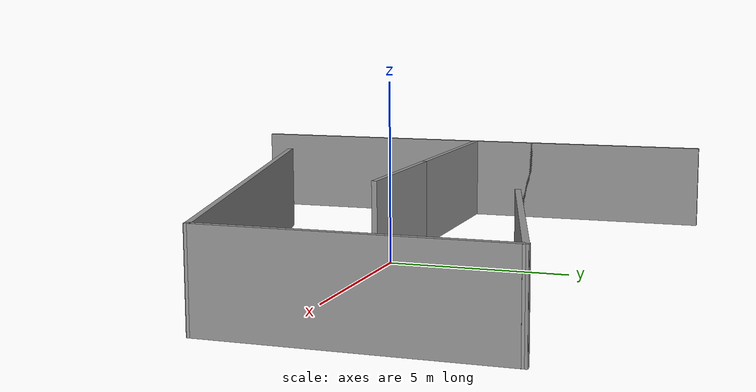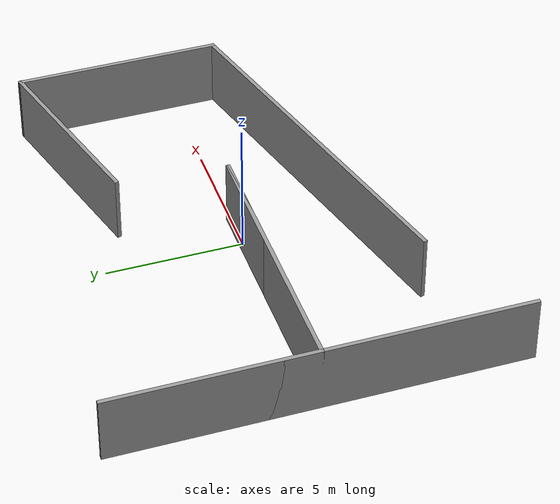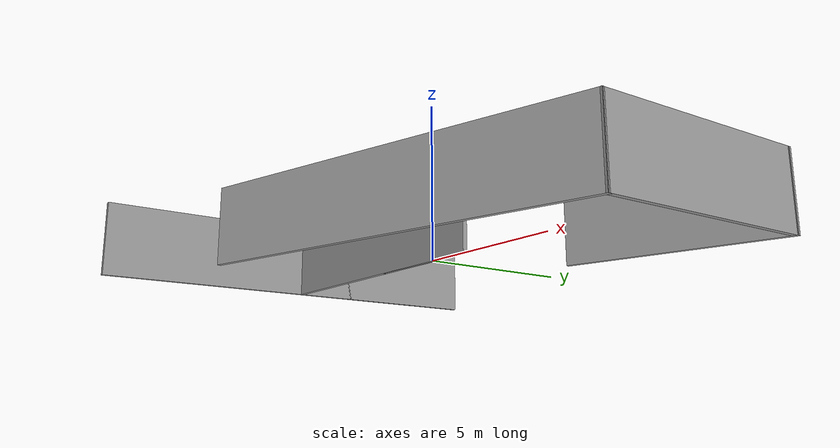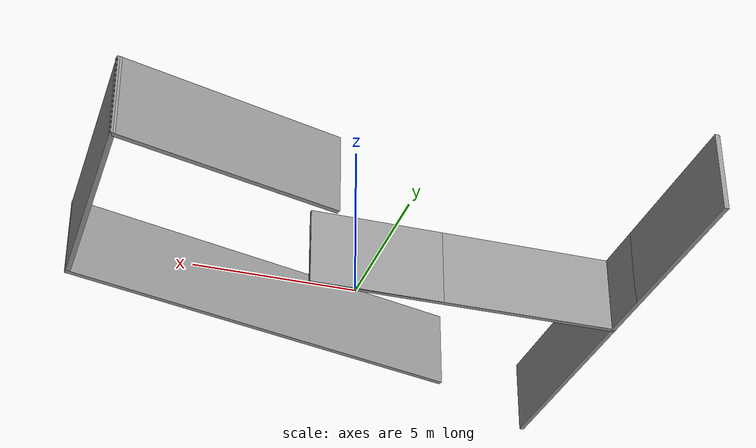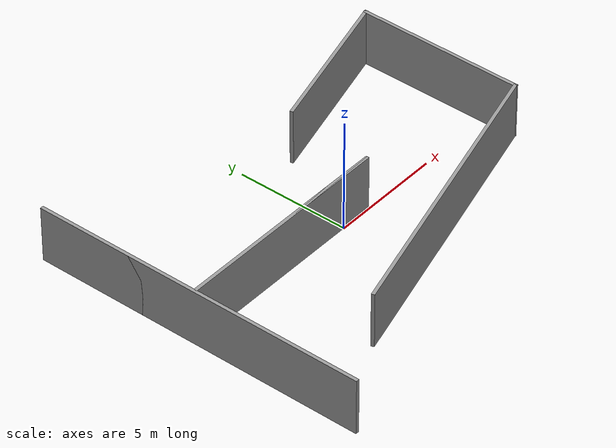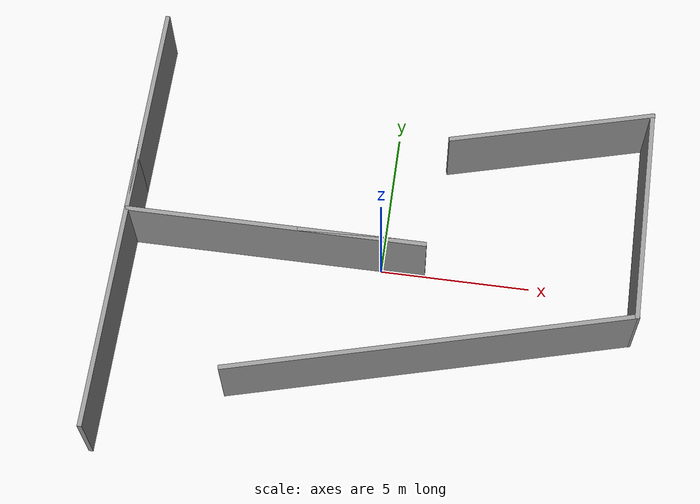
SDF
<?xml version='1.0'?>
<sdf version='1.7'>
  <model name='wall'>
    <link name='Wall_12'>
      <pose>1.99207 -3.2695 0 0 -0 0.261799</pose>
      <self_collide>0</self_collide>
      <enable_wind>0</enable_wind>
      <kinematic>0</kinematic>
      <visual name='Wall_12_Visual'>
        <pose>0 0 1.25 0 -0 0</pose>
        <geometry>
          <box>
            <size>13.5 0.15 2.5</size>
          </box>
        </geometry>
        <material>
          <script>
            <uri>file://media/materials/scripts/gazebo.material</uri>
            <name>Gazebo/Grey</name>
          </script>
          <ambient>1 1 1 1</ambient>
          <shader type='pixel'/>
        </material>
        <meta>
          <layer>0</layer>
        </meta>
        <transparency>0</transparency>
        <cast_shadows>1</cast_shadows>
      </visual>
      <collision name='Wall_12_Collision'>
        <laser_retro>0</laser_retro>
        <max_contacts>10</max_contacts>
        <pose>0 0 1.25 0 -0 0</pose>
        <geometry>
          <box>
            <size>13.5 0.15 2.5</size>
          </box>
        </geometry>
        <surface>
          <friction>
            <ode>
              <mu>1</mu>
              <mu2>1</mu2>
              <fdir1>0 0 0</fdir1>
              <slip1>0</slip1>
              <slip2>0</slip2>
            </ode>
            <torsional>
              <coefficient>1</coefficient>
              <patch_radius>0</patch_radius>
              <surface_radius>0</surface_radius>
              <use_patch_radius>1</use_patch_radius>
              <ode>
                <slip>0</slip>
              </ode>
            </torsional>
          </friction>
          <bounce>
            <restitution_coefficient>0</restitution_coefficient>
            <threshold>1e+06</threshold>
          </bounce>
          <contact>
            <collide_without_contact>0</collide_without_contact>
            <collide_without_contact_bitmask>1</collide_without_contact_bitmask>
            <collide_bitmask>1</collide_bitmask>
            <ode>
              <soft_cfm>0</soft_cfm>
              <soft_erp>0.2</soft_erp>
              <kp>1e+13</kp>
              <kd>1</kd>
              <max_vel>0.01</max_vel>
              <min_depth>0</min_depth>
            </ode>
            <bullet>
              <split_impulse>1</split_impulse>
              <split_impulse_penetration_threshold>-0.01</split_impulse_penetration_threshold>
              <soft_cfm>0</soft_cfm>
              <soft_erp>0.2</soft_erp>
              <kp>1e+13</kp>
              <kd>1</kd>
            </bullet>
          </contact>
        </surface>
      </collision>
    </link>
    <link name='Wall_13'>
      <pose>8.43962 2.13312 0 0 -0 1.5708</pose>
      <self_collide>0</self_collide>
      <enable_wind>0</enable_wind>
      <kinematic>0</kinematic>
      <visual name='Wall_13_Visual'>
        <pose>0 0 1.25 0 -0 0</pose>
        <geometry>
          <box>
            <size>7.5 0.15 2.5</size>
          </box>
        </geometry>
        <material>
          <script>
            <uri>file://media/materials/scripts/gazebo.material</uri>
            <name>Gazebo/Grey</name>
          </script>
          <ambient>1 1 1 1</ambient>
          <shader type='pixel'/>
        </material>
        <meta>
          <layer>0</layer>
        </meta>
        <transparency>0</transparency>
        <cast_shadows>1</cast_shadows>
      </visual>
      <collision name='Wall_13_Collision'>
        <laser_retro>0</laser_retro>
        <max_contacts>10</max_contacts>
        <pose>0 0 1.25 0 -0 0</pose>
        <geometry>
          <box>
            <size>7.5 0.15 2.5</size>
          </box>
        </geometry>
        <surface>
          <friction>
            <ode>
              <mu>1</mu>
              <mu2>1</mu2>
              <fdir1>0 0 0</fdir1>
              <slip1>0</slip1>
              <slip2>0</slip2>
            </ode>
            <torsional>
              <coefficient>1</coefficient>
              <patch_radius>0</patch_radius>
              <surface_radius>0</surface_radius>
              <use_patch_radius>1</use_patch_radius>
              <ode>
                <slip>0</slip>
              </ode>
            </torsional>
          </friction>
          <bounce>
            <restitution_coefficient>0</restitution_coefficient>
            <threshold>1e+06</threshold>
          </bounce>
          <contact>
            <collide_without_contact>0</collide_without_contact>
            <collide_without_contact_bitmask>1</collide_without_contact_bitmask>
            <collide_bitmask>1</collide_bitmask>
            <ode>
              <soft_cfm>0</soft_cfm>
              <soft_erp>0.2</soft_erp>
              <kp>1e+13</kp>
              <kd>1</kd>
              <max_vel>0.01</max_vel>
              <min_depth>0</min_depth>
            </ode>
            <bullet>
              <split_impulse>1</split_impulse>
              <split_impulse_penetration_threshold>-0.01</split_impulse_penetration_threshold>
              <soft_cfm>0</soft_cfm>
              <soft_erp>0.2</soft_erp>
              <kp>1e+13</kp>
              <kd>1</kd>
            </bullet>
          </contact>
        </surface>
      </collision>
    </link>
    <link name='Wall_14'>
      <pose>5.13133 4.92166 0 0 0 -2.87979</pose>
      <self_collide>0</self_collide>
      <enable_wind>0</enable_wind>
      <kinematic>0</kinematic>
      <visual name='Wall_14_Visual'>
        <pose>0 0 1.25 0 -0 0</pose>
        <geometry>
          <box>
            <size>7 0.15 2.5</size>
          </box>
        </geometry>
        <material>
          <script>
            <uri>file://media/materials/scripts/gazebo.material</uri>
            <name>Gazebo/Grey</name>
          </script>
          <ambient>1 1 1 1</ambient>
          <shader type='pixel'/>
        </material>
        <meta>
          <layer>0</layer>
        </meta>
        <transparency>0</transparency>
        <cast_shadows>1</cast_shadows>
      </visual>
      <collision name='Wall_14_Collision'>
        <laser_retro>0</laser_retro>
        <max_contacts>10</max_contacts>
        <pose>0 0 1.25 0 -0 0</pose>
        <geometry>
          <box>
            <size>7 0.15 2.5</size>
          </box>
        </geometry>
        <surface>
          <friction>
            <ode>
              <mu>1</mu>
              <mu2>1</mu2>
              <fdir1>0 0 0</fdir1>
              <slip1>0</slip1>
              <slip2>0</slip2>
            </ode>
            <torsional>
              <coefficient>1</coefficient>
              <patch_radius>0</patch_radius>
              <surface_radius>0</surface_radius>
              <use_patch_radius>1</use_patch_radius>
              <ode>
                <slip>0</slip>
              </ode>
            </torsional>
          </friction>
          <bounce>
            <restitution_coefficient>0</restitution_coefficient>
            <threshold>1e+06</threshold>
          </bounce>
          <contact>
            <collide_without_contact>0</collide_without_contact>
            <collide_without_contact_bitmask>1</collide_without_contact_bitmask>
            <collide_bitmask>1</collide_bitmask>
            <ode>
              <soft_cfm>0</soft_cfm>
              <soft_erp>0.2</soft_erp>
              <kp>1e+13</kp>
              <kd>1</kd>
              <max_vel>0.01</max_vel>
              <min_depth>0</min_depth>
            </ode>
            <bullet>
              <split_impulse>1</split_impulse>
              <split_impulse_penetration_threshold>-0.01</split_impulse_penetration_threshold>
              <soft_cfm>0</soft_cfm>
              <soft_erp>0.2</soft_erp>
              <kp>1e+13</kp>
              <kd>1</kd>
            </bullet>
          </contact>
        </surface>
      </collision>
    </link>
    <link name='Wall_16'>
      <pose>-0.65648 0.075 0 0 -0 0</pose>
      <self_collide>0</self_collide>
      <enable_wind>0</enable_wind>
      <kinematic>0</kinematic>
      <visual name='Wall_16_Visual'>
        <pose>0 0 1.25 0 -0 0</pose>
        <geometry>
          <box>
            <size>4.25 0.15 2.5</size>
          </box>
        </geometry>
        <material>
          <script>
            <uri>file://media/materials/scripts/gazebo.material</uri>
            <name>Gazebo/Grey</name>
          </script>
          <ambient>1 1 1 1</ambient>
          <shader type='pixel'/>
        </material>
        <meta>
          <layer>0</layer>
        </meta>
        <transparency>0</transparency>
        <cast_shadows>1</cast_shadows>
      </visual>
      <collision name='Wall_16_Collision'>
        <laser_retro>0</laser_retro>
        <max_contacts>10</max_contacts>
        <pose>0 0 1.25 0 -0 0</pose>
        <geometry>
          <box>
            <size>4.25 0.15 2.5</size>
          </box>
        </geometry>
        <surface>
          <friction>
            <ode>
              <mu>1</mu>
              <mu2>1</mu2>
              <fdir1>0 0 0</fdir1>
              <slip1>0</slip1>
              <slip2>0</slip2>
            </ode>
            <torsional>
              <coefficient>1</coefficient>
              <patch_radius>0</patch_radius>
              <surface_radius>0</surface_radius>
              <use_patch_radius>1</use_patch_radius>
              <ode>
                <slip>0</slip>
              </ode>
            </torsional>
          </friction>
          <bounce>
            <restitution_coefficient>0</restitution_coefficient>
            <threshold>1e+06</threshold>
          </bounce>
          <contact>
            <collide_without_contact>0</collide_without_contact>
            <collide_without_contact_bitmask>1</collide_without_contact_bitmask>
            <collide_bitmask>1</collide_bitmask>
            <ode>
              <soft_cfm>0</soft_cfm>
              <soft_erp>0.2</soft_erp>
              <kp>1e+13</kp>
              <kd>1</kd>
              <max_vel>0.01</max_vel>
              <min_depth>0</min_depth>
            </ode>
            <bullet>
              <split_impulse>1</split_impulse>
              <split_impulse_penetration_threshold>-0.01</split_impulse_penetration_threshold>
              <soft_cfm>0</soft_cfm>
              <soft_erp>0.2</soft_erp>
              <kp>1e+13</kp>
              <kd>1</kd>
            </bullet>
          </contact>
        </surface>
      </collision>
    </link>
    <link name='Wall_17'>
      <pose>-3.53148 0.075 0 0 -0 3.14159</pose>
      <self_collide>0</self_collide>
      <enable_wind>0</enable_wind>
      <kinematic>0</kinematic>
      <visual name='Wall_17_Visual'>
        <pose>0 0 1.25 0 -0 0</pose>
        <geometry>
          <box>
            <size>10 0.15 2.5</size>
          </box>
        </geometry>
        <material>
          <script>
            <uri>file://media/materials/scripts/gazebo.material</uri>
            <name>Gazebo/Grey</name>
          </script>
          <ambient>1 1 1 1</ambient>
          <shader type='pixel'/>
        </material>
        <meta>
          <layer>0</layer>
        </meta>
        <transparency>0</transparency>
        <cast_shadows>1</cast_shadows>
      </visual>
      <collision name='Wall_17_Collision'>
        <laser_retro>0</laser_retro>
        <max_contacts>10</max_contacts>
        <pose>0 0 1.25 0 -0 0</pose>
        <geometry>
          <box>
            <size>10 0.15 2.5</size>
          </box>
        </geometry>
        <surface>
          <friction>
            <ode>
              <mu>1</mu>
              <mu2>1</mu2>
              <fdir1>0 0 0</fdir1>
              <slip1>0</slip1>
              <slip2>0</slip2>
            </ode>
            <torsional>
              <coefficient>1</coefficient>
              <patch_radius>0</patch_radius>
              <surface_radius>0</surface_radius>
              <use_patch_radius>1</use_patch_radius>
              <ode>
                <slip>0</slip>
              </ode>
            </torsional>
          </friction>
          <bounce>
            <restitution_coefficient>0</restitution_coefficient>
            <threshold>1e+06</threshold>
          </bounce>
          <contact>
            <collide_without_contact>0</collide_without_contact>
            <collide_without_contact_bitmask>1</collide_without_contact_bitmask>
            <collide_bitmask>1</collide_bitmask>
            <ode>
              <soft_cfm>0</soft_cfm>
              <soft_erp>0.2</soft_erp>
              <kp>1e+13</kp>
              <kd>1</kd>
              <max_vel>0.01</max_vel>
              <min_depth>0</min_depth>
            </ode>
            <bullet>
              <split_impulse>1</split_impulse>
              <split_impulse_penetration_threshold>-0.01</split_impulse_penetration_threshold>
              <soft_cfm>0</soft_cfm>
              <soft_erp>0.2</soft_erp>
              <kp>1e+13</kp>
              <kd>1</kd>
            </bullet>
          </contact>
        </surface>
      </collision>
    </link>
    <link name='Wall_18'>
      <pose>-8.45648 3.75 0 0 -0 1.5708</pose>
      <self_collide>0</self_collide>
      <enable_wind>0</enable_wind>
      <kinematic>0</kinematic>
      <visual name='Wall_18_Visual'>
        <pose>0 0 1.25 0 -0 0</pose>
        <geometry>
          <box>
            <size>7.5 0.15 2.5</size>
          </box>
        </geometry>
        <material>
          <script>
            <uri>file://media/materials/scripts/gazebo.material</uri>
            <name>Gazebo/Grey</name>
          </script>
          <ambient>1 1 1 1</ambient>
          <shader type='pixel'/>
        </material>
        <meta>
          <layer>0</layer>
        </meta>
        <transparency>0</transparency>
        <cast_shadows>1</cast_shadows>
      </visual>
      <collision name='Wall_18_Collision'>
        <laser_retro>0</laser_retro>
        <max_contacts>10</max_contacts>
        <pose>0 0 1.25 0 -0 0</pose>
        <geometry>
          <box>
            <size>7.5 0.15 2.5</size>
          </box>
        </geometry>
        <surface>
          <friction>
            <ode>
              <mu>1</mu>
              <mu2>1</mu2>
              <fdir1>0 0 0</fdir1>
              <slip1>0</slip1>
              <slip2>0</slip2>
            </ode>
            <torsional>
              <coefficient>1</coefficient>
              <patch_radius>0</patch_radius>
              <surface_radius>0</surface_radius>
              <use_patch_radius>1</use_patch_radius>
              <ode>
                <slip>0</slip>
              </ode>
            </torsional>
          </friction>
          <bounce>
            <restitution_coefficient>0</restitution_coefficient>
            <threshold>1e+06</threshold>
          </bounce>
          <contact>
            <collide_without_contact>0</collide_without_contact>
            <collide_without_contact_bitmask>1</collide_without_contact_bitmask>
            <collide_bitmask>1</collide_bitmask>
            <ode>
              <soft_cfm>0</soft_cfm>
              <soft_erp>0.2</soft_erp>
              <kp>1e+13</kp>
              <kd>1</kd>
              <max_vel>0.01</max_vel>
              <min_depth>0</min_depth>
            </ode>
            <bullet>
              <split_impulse>1</split_impulse>
              <split_impulse_penetration_threshold>-0.01</split_impulse_penetration_threshold>
              <soft_cfm>0</soft_cfm>
              <soft_erp>0.2</soft_erp>
              <kp>1e+13</kp>
              <kd>1</kd>
            </bullet>
          </contact>
        </surface>
      </collision>
    </link>
    <link name='Wall_19'>
      <pose>-8.45648 0 0 0 0 -1.5708</pose>
      <self_collide>0</self_collide>
      <enable_wind>0</enable_wind>
      <kinematic>0</kinematic>
      <visual name='Wall_19_Visual'>
        <pose>0 0 1.25 0 -0 0</pose>
        <geometry>
          <box>
            <size>15 0.15 2.5</size>
          </box>
        </geometry>
        <material>
          <script>
            <uri>file://media/materials/scripts/gazebo.material</uri>
            <name>Gazebo/Grey</name>
          </script>
          <ambient>1 1 1 1</ambient>
          <shader type='pixel'/>
        </material>
        <meta>
          <layer>0</layer>
        </meta>
        <transparency>0</transparency>
        <cast_shadows>1</cast_shadows>
      </visual>
      <collision name='Wall_19_Collision'>
        <laser_retro>0</laser_retro>
        <max_contacts>10</max_contacts>
        <pose>0 0 1.25 0 -0 0</pose>
        <geometry>
          <box>
            <size>15 0.15 2.5</size>
          </box>
        </geometry>
        <surface>
          <friction>
            <ode>
              <mu>1</mu>
              <mu2>1</mu2>
              <fdir1>0 0 0</fdir1>
              <slip1>0</slip1>
              <slip2>0</slip2>
            </ode>
            <torsional>
              <coefficient>1</coefficient>
              <patch_radius>0</patch_radius>
              <surface_radius>0</surface_radius>
              <use_patch_radius>1</use_patch_radius>
              <ode>
                <slip>0</slip>
              </ode>
            </torsional>
          </friction>
          <bounce>
            <restitution_coefficient>0</restitution_coefficient>
            <threshold>1e+06</threshold>
          </bounce>
          <contact>
            <collide_without_contact>0</collide_without_contact>
            <collide_without_contact_bitmask>1</collide_without_contact_bitmask>
            <collide_bitmask>1</collide_bitmask>
            <ode>
              <soft_cfm>0</soft_cfm>
              <soft_erp>0.2</soft_erp>
              <kp>1e+13</kp>
              <kd>1</kd>
              <max_vel>0.01</max_vel>
              <min_depth>0</min_depth>
            </ode>
            <bullet>
              <split_impulse>1</split_impulse>
              <split_impulse_penetration_threshold>-0.01</split_impulse_penetration_threshold>
              <soft_cfm>0</soft_cfm>
              <soft_erp>0.2</soft_erp>
              <kp>1e+13</kp>
              <kd>1</kd>
            </bullet>
          </contact>
        </surface>
      </collision>
    </link>
    <static>1</static>
    <allow_auto_disable>1</allow_auto_disable>
  </model>
</sdf>
